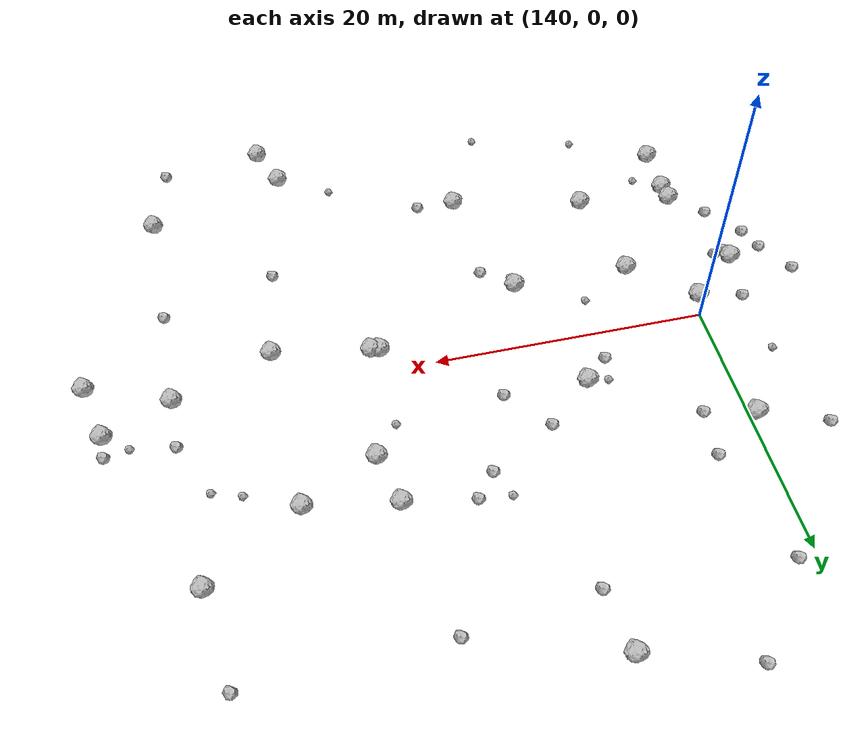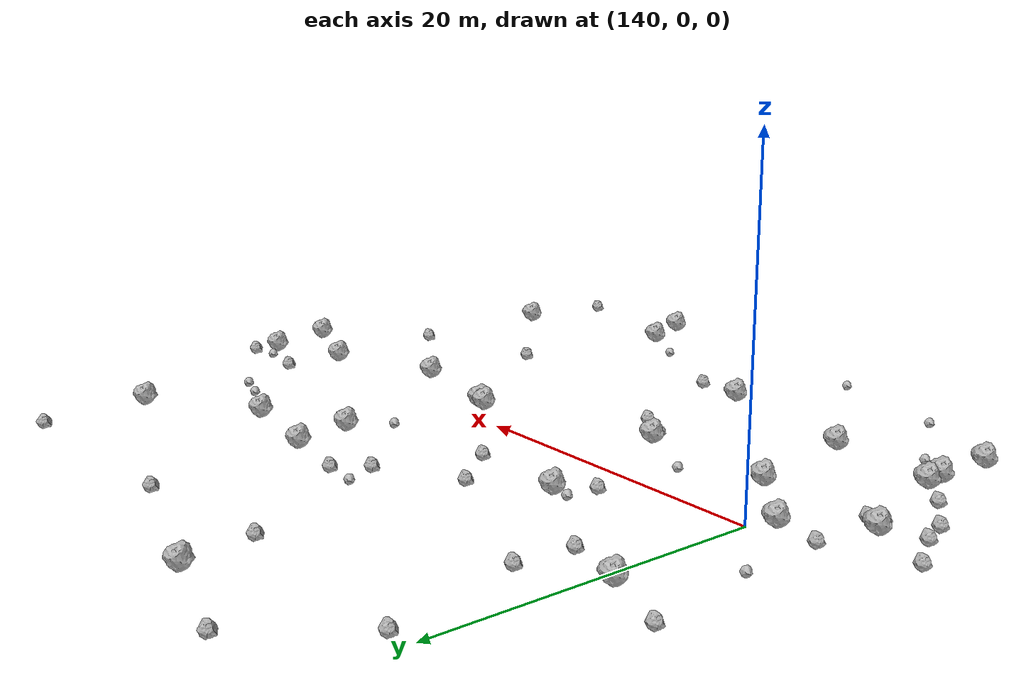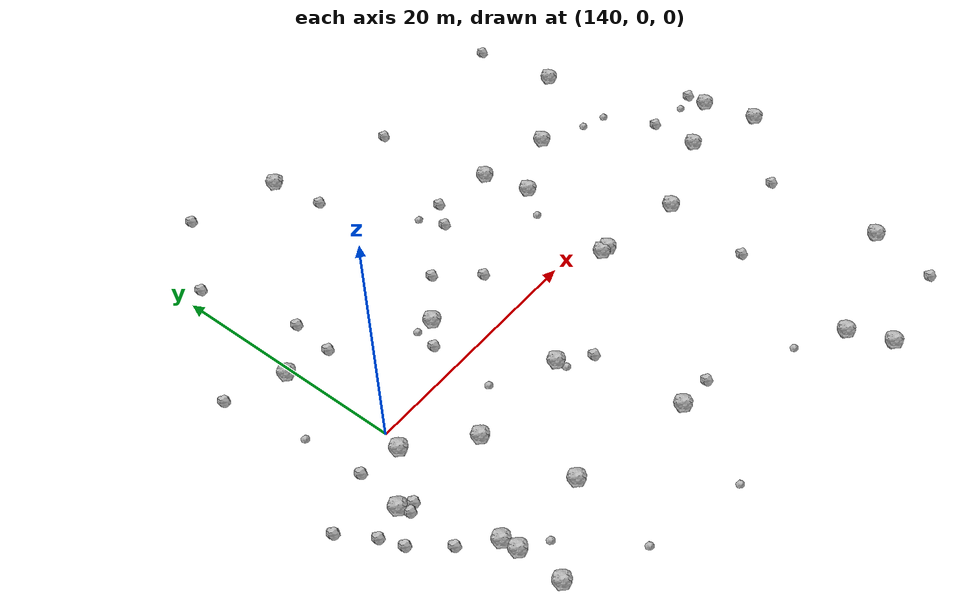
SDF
<sdf version="1.6">
 <world name="default">
  <include><uri>model://sun</uri></include>
  <model name="rock1_4_2">
   <include><uri>model://rock1</uri><pose>139.5738251178715 -1.701526702271888 0.5 0 0 0</pose></include>
  </model>
  <model name="rock1_4_3">
   <include><uri>model://rock1</uri><pose>164.74090609108686 10.946093921980527 0.5 0 0 0</pose></include>
  </model>
  <model name="rock1_4_4">
   <include><uri>model://rock1</uri><pose>165.6449728960742 7.0994495506583775 0.5 0 0 0</pose></include>
  </model>
  <model name="rock1_4_5">
   <include><uri>model://rock1</uri><pose>138.175142759064 -17.390831757787893 0.5 0 0 0</pose></include>
  </model>
  <model name="rock1_4_6">
   <include><uri>model://rock1</uri><pose>155.19049010619457 -15.537061679337338 0.5 0 0 0</pose></include>
  </model>
  <model name="rock1_4_7">
   <include><uri>model://rock1</uri><pose>164.38441190962135 -1.9981665115543912 0.5 0 0 0</pose></include>
  </model>
  <model name="rock1_4_8">
   <include><uri>model://rock1</uri><pose>135.81832608901183 -4.930065138307565 0.5 0 0 0</pose></include>
  </model>
  <model name="rock1_4_9">
   <include><uri>model://rock1</uri><pose>143.9672598181076 -5.619320515707276 0.5 0 0 0</pose></include>
  </model>
  <model name="rock1_4_10">
   <include><uri>model://rock1</uri><pose>153.3637885565832 24.199549305262607 0.5 0 0 0</pose></include>
  </model>
  <model name="rock1_4_11">
   <include><uri>model://rock1</uri><pose>152.71411885975687 -5.767979218887525 0.5 0 0 0</pose></include>
  </model>
  <model name="rock1_4_12">
   <include><uri>model://rock1</uri><pose>169.8458166077055 -24.803717996123016 0.5 0 0 0</pose></include>
  </model>
  <model name="rock1_4_13">
   <include><uri>model://rock1</uri><pose>168.56254825077104 -21.415500244366857 0.5 0 0 0</pose></include>
  </model>
  <model name="rock1_4_14">
   <include><uri>model://rock1</uri><pose>178.6469274728738 -0.6232341528379841 0.5 0 0 0</pose></include>
  </model>
  <model name="rock1_4_15">
   <include><uri>model://rock1</uri><pose>171.40959857167152 -3.312909928215131 0.5 0 0 0</pose></include>
  </model>
  <model name="rock1_4_16">
   <include><uri>model://rock1</uri><pose>163.77909126715932 -1.8867703156109776 0.5 0 0 0</pose></include>
  </model>
  <model name="rock1_4_17">
   <include><uri>model://rock1</uri><pose>145.26604947710325 -13.28306687609781 0.5 0 0 0</pose></include>
  </model>
  <model name="rock1_4_18">
   <include><uri>model://rock1</uri><pose>178.80922501839652 -18.222275961627403 0.5 0 0 0</pose></include>
  </model>
  <model name="rock1_4_19">
   <include><uri>model://rock1</uri><pose>138.19249662310628 -12.196661720679213 0.5 0 0 0</pose></include>
  </model>
  <model name="rock1_4_20">
   <include><uri>model://rock1</uri><pose>150.0349495750871 4.141241439761529 0.5 0 0 0</pose></include>
  </model>
  <model name="rock1_4_21">
   <include><uri>model://rock1</uri><pose>177.81950282563287 14.283570709732345 0.5 0 0 0</pose></include>
  </model>
  <model name="rock1_4_22">
   <include><uri>model://rock1</uri><pose>184.58300924735863 -2.990384442942073 0.5 0 0 0</pose></include>
  </model>
  <model name="rock1_4_23">
   <include><uri>model://rock1</uri><pose>183.4825639906311 1.409518135547092 0.5 0 0 0</pose></include>
  </model>
  <model name="rock1_4_24">
   <include><uri>model://rock1</uri><pose>171.06763972449562 9.822777874549992 0.5 0 0 0</pose></include>
  </model>
  <model name="rock1_4_25">
   <include><uri>model://rock1</uri><pose>138.30898774391386 -13.55288000986328 0.5 0 0 0</pose></include>
  </model>
  <model name="rock1_4_26">
   <include><uri>model://rock1</uri><pose>139.56689157474847 9.373888729115116 0.5 0 0 0</pose></include>
  </model>
  <model name="rock2_4_0">
   <include><uri>model://rock2</uri><pose>135.84459477312976 -9.969280823810514 0.3 0 0 0</pose></include>
  </model>
  <model name="rock2_4_1">
   <include><uri>model://rock2</uri><pose>143.3757330781826 12.118840643396396 0.3 0 0 0</pose></include>
  </model>
  <model name="rock2_4_2">
   <include><uri>model://rock2</uri><pose>158.08204884092035 -15.613864254520674 0.3 0 0 0</pose></include>
  </model>
  <model name="rock2_4_3">
   <include><uri>model://rock2</uri><pose>133.14928704100393 -5.452679222144255 0.3 0 0 0</pose></include>
  </model>
  <model name="rock2_4_4">
   <include><uri>model://rock2</uri><pose>170.34857599370895 -10.800728209736508 0.3 0 0 0</pose></include>
  </model>
  <model name="rock2_4_5">
   <include><uri>model://rock2</uri><pose>153.9551308746121 19.796429312225797 0.3 0 0 0</pose></include>
  </model>
  <model name="rock2_4_6">
   <include><uri>model://rock2</uri><pose>133.8000217632576 -7.290015592031363 0.3 0 0 0</pose></include>
  </model>
  <model name="rock2_4_7">
   <include><uri>model://rock2</uri><pose>183.42554854210294 3.1610882135511957 0.3 0 0 0</pose></include>
  </model>
  <model name="rock2_4_8">
   <include><uri>model://rock2</uri><pose>148.2108224097019 2.4917826514056216 0.3 0 0 0</pose></include>
  </model>
  <model name="rock2_4_9">
   <include><uri>model://rock2</uri><pose>134.87317207028738 11.23409567134366 0.3 0 0 0</pose></include>
  </model>
  <model name="rock2_4_10">
   <include><uri>model://rock2</uri><pose>159.81477026046858 11.846114909404932 0.3 0 0 0</pose></include>
  </model>
  <model name="rock2_4_11">
   <include><uri>model://rock2</uri><pose>141.36964216631782 20.495145072837282 0.3 0 0 0</pose></include>
  </model>
  <model name="rock2_4_12">
   <include><uri>model://rock2</uri><pose>178.60898946207595 3.3572029107736796 0.3 0 0 0</pose></include>
  </model>
  <model name="rock2_4_13">
   <include><uri>model://rock2</uri><pose>146.03042491440215 26.519906840748895 0.3 0 0 0</pose></include>
  </model>
  <model name="rock2_4_14">
   <include><uri>model://rock2</uri><pose>177.4251517573731 -23.793031782594714 0.3 0 0 0</pose></include>
  </model>
  <model name="rock2_4_15">
   <include><uri>model://rock2</uri><pose>136.32060027839404 -0.9514299089274587 0.3 0 0 0</pose></include>
  </model>
  <model name="rock2_4_16">
   <include><uri>model://rock2</uri><pose>176.8730227836186 21.25226022253532 0.3 0 0 0</pose></include>
  </model>
  <model name="rock2_4_17">
   <include><uri>model://rock2</uri><pose>154.90752090671998 -7.598687614212686 0.3 0 0 0</pose></include>
  </model>
  <model name="rock2_4_18">
   <include><uri>model://rock2</uri><pose>136.79272769358667 -5.451874034584542 0.3 0 0 0</pose></include>
  </model>
  <model name="rock2_4_19">
   <include><uri>model://rock2</uri><pose>178.6497686123757 -8.412672605283824 0.3 0 0 0</pose></include>
  </model>
  <model name="rock2_4_20">
   <include><uri>model://rock2</uri><pose>156.1010479822842 4.084027578635393 0.3 0 0 0</pose></include>
  </model>
  <model name="rock2_4_21">
   <include><uri>model://rock2</uri><pose>143.06927384117674 8.568415130133417 0.3 0 0 0</pose></include>
  </model>
  <model name="rock2_4_22">
   <include><uri>model://rock2</uri><pose>131.54113272081696 -2.781570154916068 0.3 0 0 0</pose></include>
  </model>
  <model name="rock2_4_23">
   <include><uri>model://rock2</uri><pose>158.37664050732 10.033681188004046 0.3 0 0 0</pose></include>
  </model>
  <model name="rock2_4_24">
   <include><uri>model://rock2</uri><pose>153.50244140552843 7.244756818466996 0.3 0 0 0</pose></include>
  </model>
  <model name="rock2_4_25">
   <include><uri>model://rock2</uri><pose>163.14274551170928 20.90809898722822 0.3 0 0 0</pose></include>
  </model>
  <model name="rock2_4_26">
   <include><uri>model://rock2</uri><pose>136.06738617899725 -5.783518673629448 0.3 0 0 0</pose></include>
  </model>
  <model name="rock3_4_0">
   <include><uri>model://rock3</uri><pose>152.7761415627365 -6.667932949751318 0.2 0 0 0</pose></include>
  </model>
  <model name="rock3_4_1">
   <include><uri>model://rock3</uri><pose>147.88104012284785 -3.172945104411241 0.2 0 0 0</pose></include>
  </model>
  <model name="rock3_4_2">
   <include><uri>model://rock3</uri><pose>143.93845823380434 -20.42246888031251 0.2 0 0 0</pose></include>
  </model>
  <model name="rock3_4_3">
   <include><uri>model://rock3</uri><pose>157.52154922029956 12.016966693279137 0.2 0 0 0</pose></include>
  </model>
  <model name="rock3_4_4">
   <include><uri>model://rock3</uri><pose>164.68860980967287 -19.16748694041995 0.2 0 0 0</pose></include>
  </model>
  <model name="rock3_4_5">
   <include><uri>model://rock3</uri><pose>174.67430981700065 8.12778206286535 0.2 0 0 0</pose></include>
  </model>
  <model name="rock3_4_6">
   <include><uri>model://rock3</uri><pose>151.88575583809717 -22.5866277739987 0.2 0 0 0</pose></include>
  </model>
  <model name="rock3_4_7">
   <include><uri>model://rock3</uri><pose>140.1881679789244 -14.859775182396042 0.2 0 0 0</pose></include>
  </model>
  <model name="rock3_4_8">
   <include><uri>model://rock3</uri><pose>163.84151715302337 4.749551427939387 0.2 0 0 0</pose></include>
  </model>
  <model name="rock3_4_9">
   <include><uri>model://rock3</uri><pose>176.6848171862077 7.448680482148532 0.2 0 0 0</pose></include>
  </model>
  <model name="rock3_4_10">
   <include><uri>model://rock3</uri><pose>136.0862782364504 4.175116197208837 0.2 0 0 0</pose></include>
  </model>
  <model name="rock3_4_11">
   <include><uri>model://rock3</uri><pose>181.68519373336486 2.756452906698037 0.2 0 0 0</pose></include>
  </model>
  <model name="rock3_4_12">
   <include><uri>model://rock3</uri><pose>148.50513084080632 4.324445436465581 0.2 0 0 0</pose></include>
  </model>
 </world>
</sdf>
